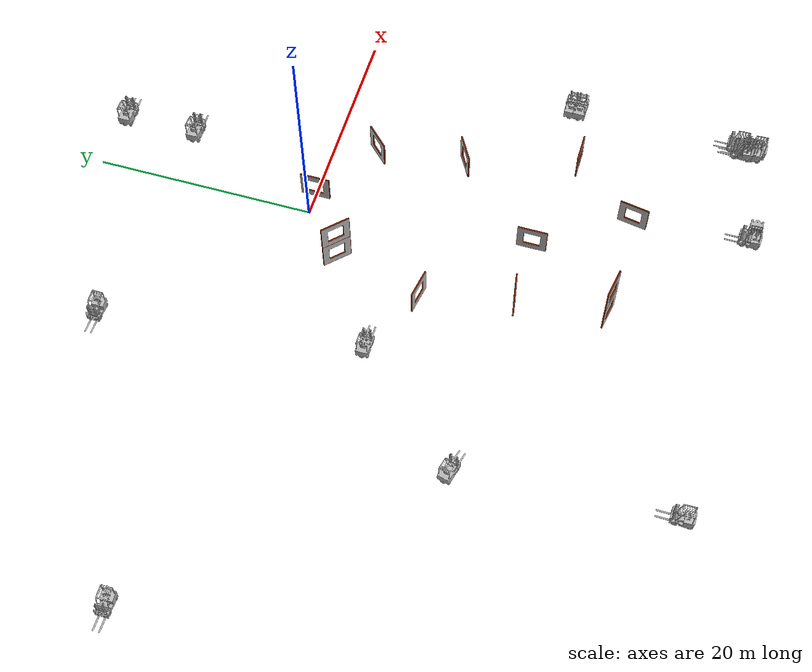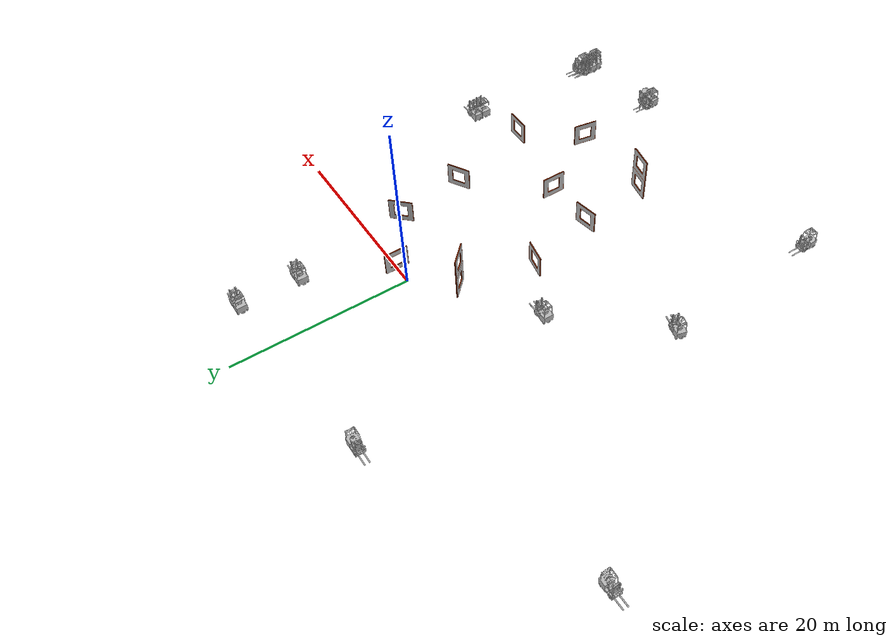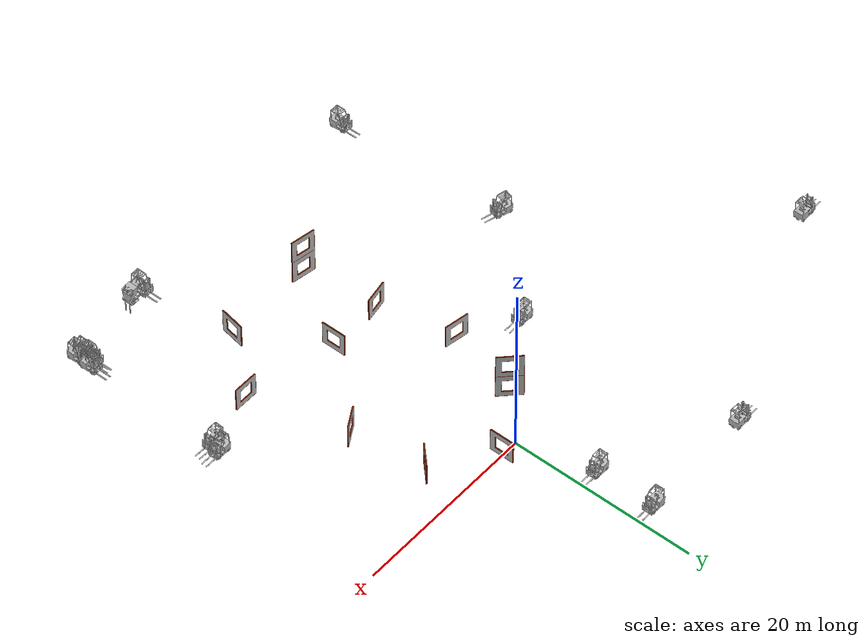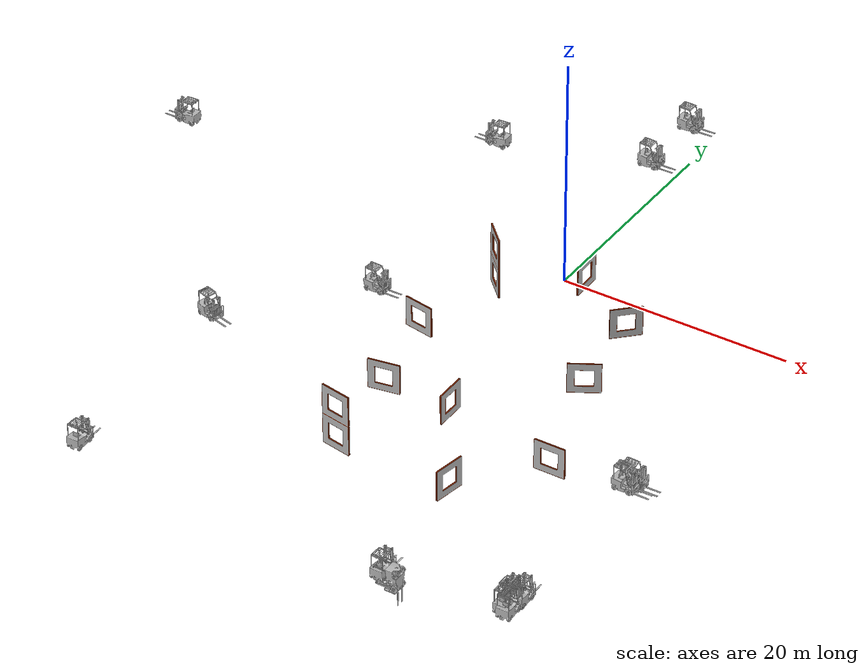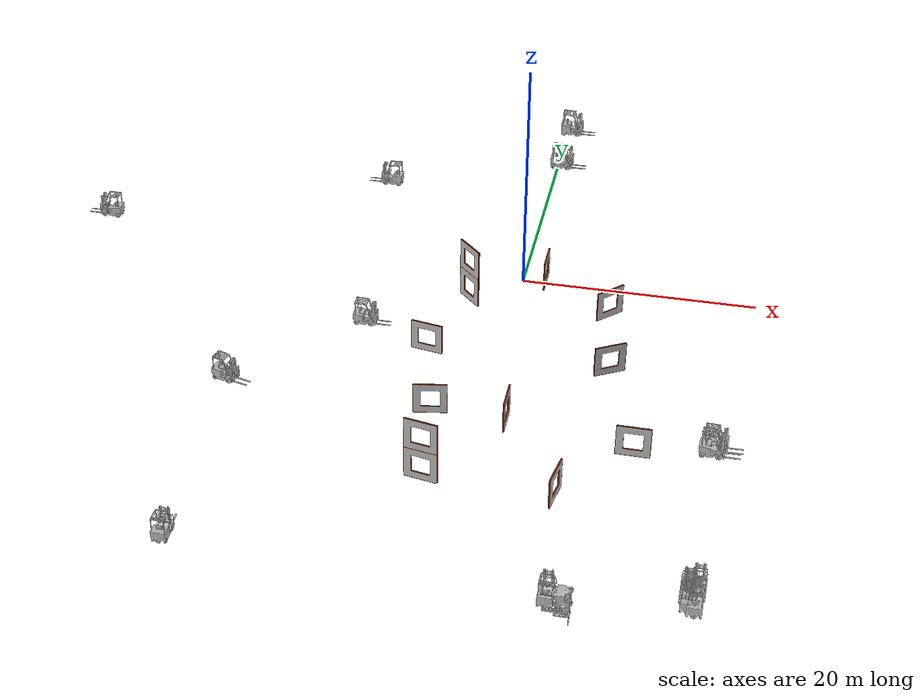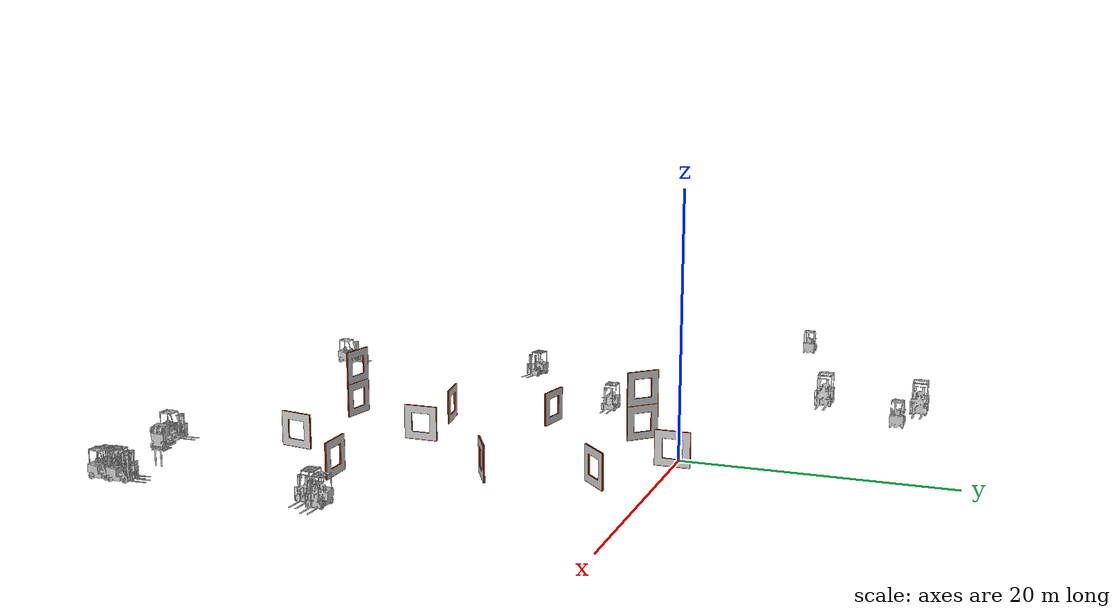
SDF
<sdf version="1.8">
 <world name="x3_illini_warehouse">
  <plugin filename="gz-sim-physics-system" name="gz::sim::systems::Physics"/>
  <plugin filename="gz-sim-sensors-system" name="gz::sim::systems::Sensors">
   <render_engine>ogre2</render_engine>
  </plugin>
  <plugin filename="gz-sim-imu-system" name="gz::sim::systems::Imu"/>
  <plugin filename="gz-sim-scene-broadcaster-system" name="gz::sim::systems::SceneBroadcaster"/>
  <plugin filename="gz-sim-user-commands-system" name="gz::sim::systems::UserCommands"/>
  <physics name="fast" type="ignored">
   <max_step_size>0.004</max_step_size>
   <real_time_factor>1</real_time_factor>
  </physics>
  <scene><ambient>0.3 0.3 0.3</ambient><grid>false</grid></scene>
  <light type="spot" name="spot">
   <pose>-12 -34 10.0 0 0 0</pose>
   <diffuse>1 1 1 1</diffuse>
   <specular>1 1 1 1</specular>
   <intensity>1</intensity>
   <attenuation>
    <range>30</range>
    <linear>0.03</linear>
    <constant>0.02</constant>
    <quadratic>0.0</quadratic>
   </attenuation>
   <direction>0 0 -1</direction>
   <spot><inner_angle>0</inner_angle><outer_angle>2.5</outer_angle><falloff>0.5</falloff></spot>
   <visualize>false</visualize>
  </light>
  <light type="spot" name="spot2">
   <pose>8 -14 10.0 0 0 0</pose>
   <diffuse>1 1 1 1</diffuse>
   <specular>1 1 1 1</specular>
   <intensity>1</intensity>
   <attenuation>
    <range>30</range>
    <linear>0.03</linear>
    <constant>0.02</constant>
    <quadratic>0.0</quadratic>
   </attenuation>
   <direction>0 0 -1</direction>
   <spot><inner_angle>0</inner_angle><outer_angle>2.5</outer_angle><falloff>0.5</falloff></spot>
   <cast_shadows>false</cast_shadows>
   <visualize>false</visualize>
  </light>
  <light type="spot" name="spot3">
   <pose>-3 -14 10.0 0 0 0</pose>
   <diffuse>1 1 1 1</diffuse>
   <specular>1 1 1 1</specular>
   <intensity>1</intensity>
   <attenuation>
    <range>30</range>
    <linear>0.03</linear>
    <constant>0.02</constant>
    <quadratic>0.0</quadratic>
   </attenuation>
   <direction>0 0 -1</direction>
   <spot><inner_angle>0</inner_angle><outer_angle>2.5</outer_angle><falloff>0.5</falloff></spot>
   <cast_shadows>false</cast_shadows>
   <visualize>false</visualize>
  </light>
  <light type="spot" name="spot4">
   <pose>-22 8 12.0 0 0 0</pose>
   <diffuse>1 1 1 1</diffuse>
   <specular>1 1 1 1</specular>
   <intensity>1</intensity>
   <attenuation>
    <range>30</range>
    <linear>0.03</linear>
    <constant>0.02</constant>
    <quadratic>0.0</quadratic>
   </attenuation>
   <direction>0 0 -1</direction>
   <spot><inner_angle>0</inner_angle><outer_angle>2.5</outer_angle><falloff>0.5</falloff></spot>
   <cast_shadows>false</cast_shadows>
   <visualize>false</visualize>
  </light>
  <light type="spot" name="spot5">
   <pose>-8 -14 10.0 0 0 0</pose>
   <diffuse>1 1 1 1</diffuse>
   <specular>1 1 1 1</specular>
   <intensity>1</intensity>
   <attenuation>
    <range>30</range>
    <linear>0.03</linear>
    <constant>0.02</constant>
    <quadratic>0.0</quadratic>
   </attenuation>
   <direction>0 0 -1</direction>
   <spot><inner_angle>0</inner_angle><outer_angle>2.5</outer_angle><falloff>0.5</falloff></spot>
   <cast_shadows>false</cast_shadows>
   <visualize>false</visualize>
  </light>
  <include>
   <static>true</static>
   <name>gate1</name>
   <uri>model://orange_single_gate</uri>
   <pose>2 0 0.0 0.0 0.0 0.0</pose>
  </include>
  <include>
   <static>true</static>
   <name>gate2</name>
   <uri>model://orange_single_gate</uri>
   <pose>8 -4 0.0 0.0 0.0 -0.7854</pose>
  </include>
  <include>
   <static>true</static>
   <name>gate3</name>
   <uri>model://orange_single_gate</uri>
   <pose>9 -12 0.0 0.0 0.0 -1.0472</pose>
  </include>
  <include>
   <static>true</static>
   <name>gate4</name>
   <uri>model://orange_single_gate</uri>
   <pose>12 -22 0.0 0.0 0.0 -1.5708</pose>
  </include>
  <include>
   <static>true</static>
   <name>gate5</name>
   <uri>model://orange_single_gate</uri>
   <pose>7 -28 0.0 0.0 0.0 -0.17454</pose>
  </include>
  <include>
   <static>true</static>
   <name>gate6</name>
   <uri>model://orange_single_gate</uri>
   <pose>2 -20 0.0 0.0 0.0 0</pose>
  </include>
  <include>
   <static>true</static>
   <name>gate7</name>
   <uri>model://orange_double_gate</uri>
   <pose>-3 -28 0.0 0.0 0.0 -1.74534</pose>
  </include>
  <include>
   <static>true</static>
   <name>gate8</name>
   <uri>model://orange_single_gate</uri>
   <pose>-4 -20 0.0 0.0 0.0 -1.396267</pose>
  </include>
  <include>
   <static>true</static>
   <name>gate9</name>
   <uri>model://orange_single_gate</uri>
   <pose>-6 -12 0.0 0.0 0.0 -1.74534</pose>
  </include>
  <include>
   <static>true</static>
   <name>gate10</name>
   <uri>model://orange_double_gate</uri>
   <pose>-4 -4 0.0 0.0 0.0 -2.3562</pose>
  </include>
  <include>
   <static>true</static>
   <name>Distribution_Warehouse</name>
   <uri>model://distribution_warehouse/1</uri>
   <pose>-12 -9 0 0 0 -1.5708</pose>
  </include>
  <include>
   <static>true</static>
   <name>55gal_Drum</name>
   <uri>model://55gal_drum/1</uri>
   <pose>17.94 -37.3757 0.0000 0.0000 -0.0000 0.0000</pose>
  </include>
  <include>
   <static>true</static>
   <name>55gal_Drum.001</name>
   <uri>model://55gal_drum/1</uri>
   <pose>17.5 -36.5122 0.0000 0.0000 -0.0000 0.0000</pose>
  </include>
  <include>
   <static>true</static>
   <name>55gal_Drum.002</name>
   <uri>model://55gal_drum/1</uri>
   <pose>18.0337 -35.7386 0.0000 0.0000 -0.0000 0.0000</pose>
  </include>
  <include>
   <static>true</static>
   <name>55gal_Drum.003</name>
   <uri>model://55gal_drum/1</uri>
   <pose>17.3741 -36.2211 0.0000 0.0000 -0.0000 0.0000</pose>
  </include>
  <include>
   <static>true</static>
   <name>55gal_Drum.004</name>
   <uri>model://55gal_drum/1</uri>
   <pose>17.4938 -37.0603 0.0000 0.0000 -0.0000 0.0000</pose>
  </include>
  <include>
   <static>true</static>
   <name>Cable_Spool</name>
   <uri>model://cable_spool/1</uri>
   <pose>17.9051 -19.9041 0.0000 0.0 0.0 -1.5708</pose>
  </include>
  <include>
   <static>true</static>
   <name>Cable_Spool.001</name>
   <uri>model://cable_spool/1</uri>
   <pose>17.7221 -20.7664 0.24 0.0 0.0 -1.6</pose>
  </include>
  <include>
   <static>true</static>
   <name>Cable_Spool.002</name>
   <uri>model://cable_spool/1</uri>
   <pose>8 -38.5 0.0000 0.0000 -0.0000 0.0000</pose>
  </include>
  <include>
   <static>true</static>
   <name>Cable_Spool.003</name>
   <uri>model://cable_spool/1</uri>
   <pose>9.8 -38.7 0.4916 -1.5708 -0.0000 1.5708</pose>
  </include>
  <include>
   <static>true</static>
   <name>Dumpster_Large</name>
   <uri>model://dumpster_large/1</uri>
   <pose>-14.84 14.08 0.0000 0.0000 -0.0000 1.5708</pose>
  </include>
  <include>
   <static>true</static>
   <name>Dumpster_Large2</name>
   <uri>model://dumpster_large/1</uri>
   <pose>-38.84 3.08 0.0000 0.0000 -0.0000 1.5708</pose>
  </include>
  <include>
   <static>true</static>
   <name>Dumpster_Large3</name>
   <uri>model://dumpster_large/1</uri>
   <pose>-19.64 -37.83 0.0000 0.0000 -0.0000 0.0000</pose>
  </include>
  <include>
   <static>true</static>
   <name>Forklift</name>
   <uri>model://forklift/1</uri>
   <pose>-21.10 -18.92 0.0000 0.0000 0.0000 -1.8313</pose>
  </include>
  <include>
   <static>true</static>
   <name>Generator</name>
   <uri>model://generator/1</uri>
   <pose>1.44 17.0 5.6572 0.0 0.0 -1.5708</pose>
  </include>
  <include>
   <static>true</static>
   <name>Generator.001</name>
   <uri>model://generator/1</uri>
   <pose>1.44 10.6236 5.6572 0.0 0.0 -1.5708</pose>
  </include>
 </world>
</sdf>

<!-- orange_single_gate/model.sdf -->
<sdf version="1.9">
  <model name="orange_single_gate">
    <static>true</static>

    <link name="link">
      <visual name="visual">
        <geometry>
          <mesh>
            <uri>model://orange_single_gate/meshes/orange_single_gate.dae</uri>
          </mesh>
        </geometry>
      </visual>

      <collision name="collision">
        <geometry>
          <mesh>
            <uri>model://orange_single_gate/meshes/orange_single_gate.dae</uri>
          </mesh>
        </geometry>
      </collision>
    </link>
  </model>
</sdf>

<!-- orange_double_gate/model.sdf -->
<sdf version="1.9">
  <model name="orange_double_gate">
    <static>true</static>

    <link name="link">
      <visual name="visual">
        <geometry>
          <mesh>
            <uri>model://orange_double_gate/meshes/orange_double_gate.dae</uri>
          </mesh>
        </geometry>
      </visual>

      <collision name="collision">
        <geometry>
          <mesh>
            <uri>model://orange_double_gate/meshes/orange_double_gate.dae</uri>
          </mesh>
        </geometry>
      </collision>
    </link>
  </model>
</sdf>

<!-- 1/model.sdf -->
<sdf version="1.6">
    <model name="Forklift">
        <link name="base_link">
            <visual name="base_visual">
                <geometry>
                    <mesh>
                        <uri>base_visual.dae</uri>
                    </mesh>
                </geometry>
            </visual>
            <collision name="forklift_b132_collider_cylinder">
                <pose>-0.455378 0.684627 0.285136 0.0 1.570796 0.0</pose>
                <geometry>
                    <cylinder>
                        <radius>0.284716</radius>
                        <length>0.224494</length>
                    </cylinder>
                </geometry>
            </collision>
            <collision name="forklift_b129_collider_cylinder">
                <pose>-0.465442 -0.557447 0.222519 0.0 1.570796 0.0</pose>
                <geometry>
                    <cylinder>
                        <radius>0.238229</radius>
                        <length>0.161316</length>
                    </cylinder>
                </geometry>
            </collision>
            <collision name="forklift_b128_collider_cylinder">
                <pose>0.455379 0.684627 0.285136 0.0 1.570796 0.0</pose>
                <geometry>
                    <cylinder>
                        <radius>0.284716</radius>
                        <length>0.224494</length>
                    </cylinder>
                </geometry>
            </collision>
            <collision name="forklift_b125_collider_cylinder">
                <pose>0.465442 -0.557447 0.222519 0.0 1.570796 0.0</pose>
                <geometry>
                    <cylinder>
                        <radius>0.238229</radius>
                        <length>0.161316</length>
                    </cylinder>
                </geometry>
            </collision>
            <collision name="forklift_b044_collider_box">
                <pose>0.263007 1.684895 0.149 0.0 1.570796 0.0</pose>
                <geometry>
                    <box>
                        <size>0.034368 1.219199 0.127</size>
                    </box>
                </geometry>
            </collision>
            <collision name="forklift_b094_collider_box">
                <pose>-0.263007 1.684895 0.149 0.0 1.570796 0.0</pose>
                <geometry>
                    <box>
                        <size>0.034368 1.219199 0.127</size>
                    </box>
                </geometry>
            </collision>
            <collision name="forklift_b094_collider_box.001">
                <pose>-0.263007 1.087425 0.393275 0.0 1.570796 0.0</pose>
                <geometry>
                    <box>
                        <size>0.522919 0.024258 0.127</size>
                    </box>
                </geometry>
            </collision>
            <collision name="forklift_b044_collider_box.001">
                <pose>0.263007 1.087432 0.393275 0.0 1.570796 0.0</pose>
                <geometry>
                    <box>
                        <size>0.522919 0.024273 0.127</size>
                    </box>
                </geometry>
            </collision>
            <collision name="forklift_b033_collider_box">
                <pose>0.0 1.050077 0.674221 0.0 1.570796 0.0</pose>
                <geometry>
                    <box>
                        <size>1.039757 0.075838 1.084605</size>
                    </box>
                </geometry>
            </collision>
            <collision name="forklift_b026_collider_box">
                <pose>0.0 -0.427481 0.582787 0.0 1.570796 0.0</pose>
                <geometry>
                    <box>
                        <size>0.93852 0.893155 1.0922</size>
                    </box>
                </geometry>
            </collision>
            <collision name="forklift_b026_collider_box.001">
                <pose>0.0 0.203739 0.381118 0.0 1.570796 0.0</pose>
                <geometry>
                    <box>
                        <size>0.535182 1.345925 1.0922</size>
                    </box>
                </geometry>
            </collision>
            <collision name="forklift_b140_collider_box">
                <pose>0.0 0.851012 1.063734 0.0 1.570796 0.0</pose>
                <geometry>
                    <box>
                        <size>1.870128 0.222264 0.721164</size>
                    </box>
                </geometry>
            </collision>
            <collision name="forklift_b139_collider_box">
                <pose>-0.0 0.798919 1.95054 0.0 1.570796 0.0</pose>
                <geometry>
                    <box>
                        <size>0.034998 0.277386 0.742054</size>
                    </box>
                </geometry>
            </collision>
            <collision name="forklift_b139_collider_box.001">
                <pose>0.0 0.756692 1.823356 0.0 1.570796 0.0</pose>
                <geometry>
                    <box>
                        <size>0.288451 0.157958 0.440354</size>
                    </box>
                </geometry>
            </collision>
            <collision name="forklift_b140_collider_box.001">
                <pose>0.0 0.878046 0.875679 0.0 1.570796 0.0</pose>
                <geometry>
                    <box>
                        <size>0.22967 0.129587 0.875406</size>
                    </box>
                </geometry>
            </collision>
            <collision name="forklift_b139_collider_box.002">
                <pose>-0.000873 0.515486 0.930159 1.570796 1.308997 1.570796</pose>
                <geometry>
                    <box>
                        <size>0.660991 0.220155 0.243121</size>
                    </box>
                </geometry>
            </collision>
            <collision name="forklift_b139_collider_cylinder">
                <pose>0.0 0.338926 1.258317 -0.272899 3.141593 -0.0</pose>
                <geometry>
                    <cylinder>
                        <radius>0.114914</radius>
                        <length>0.083365</length>
                    </cylinder>
                </geometry>
            </collision>
            <collision name="forklift_b143_collider_box">
                <pose>0.203028 0.395788 1.121018 0.992323 -0.000479 3.141591</pose>
                <geometry>
                    <box>
                        <size>0.06902 0.360071 0.092192</size>
                    </box>
                </geometry>
            </collision>
            <collision name="forklift_b139_collider_box.003">
                <pose>-0.284765 0.466145 0.966224 1.260286 3.141593 -0.0</pose>
                <geometry>
                    <box>
                        <size>0.075778 0.433645 0.070774</size>
                    </box>
                </geometry>
            </collision>
            <collision name="forklift_b139_collider_box.004">
                <pose>-0.0 0.538142 0.948467 1.570797 -1.329257 -1.570797</pose>
                <geometry>
                    <box>
                        <size>0.3188 0.148748 0.910215</size>
                    </box>
                </geometry>
            </collision>
            <collision name="forklift_b139_collider_box.005">
                <pose>-0.471358 -0.666068 1.553107 0.0 -0.0 -1.570796</pose>
                <geometry>
                    <box>
                        <size>0.062739 0.033 1.032844</size>
                    </box>
                </geometry>
            </collision>
            <collision name="forklift_b139_collider_box.006">
                <pose>0.471358 -0.666068 1.553107 0.0 1.570796 0.0</pose>
                <geometry>
                    <box>
                        <size>1.032844 0.062739 0.033</size>
                    </box>
                </geometry>
            </collision>
            <collision name="forklift_b142_collider_box">
                <pose>-0.0 -0.172392 2.059983 -0.023069 -0.0 -0.0</pose>
                <geometry>
                    <box>
                        <size>0.981179 1.125203 0.115755</size>
                    </box>
                </geometry>
            </collision>
            <collision name="forklift_b139_collider_box.007">
                <pose>-0.47289 0.481024 1.334569 1.570796 1.326061 1.570796</pose>
                <geometry>
                    <box>
                        <size>1.500593 0.074299 0.0354</size>
                    </box>
                </geometry>
            </collision>
            <collision name="forklift_b139_collider_box.008">
                <pose>0.47289 0.481024 1.334569 1.570796 1.326061 1.570796</pose>
                <geometry>
                    <box>
                        <size>1.500593 0.074299 0.0354</size>
                    </box>
                </geometry>
            </collision>
            <collision name="forklift_b139_collider_box.009">
                <pose>0.0 -0.343208 1.190168 0.0 1.570796 0.0</pose>
                <geometry>
                    <box>
                        <size>0.39912 0.163592 0.561282</size>
                    </box>
                </geometry>
            </collision>
            <collision name="forklift_b139_collider_box.010">
                <pose>0.0 0.539583 0.734719 -0.393722 -0.0 3.141593</pose>
                <geometry>
                    <box>
                        <size>0.902271 0.740745 0.111237</size>
                    </box>
                </geometry>
            </collision>
            <collision name="forklift_b140_collider_box.002">
                <pose>0.0 0.927693 0.409215 3.141592 -0.0 -0.0</pose>
                <geometry>
                    <box>
                        <size>0.834675 0.203935 0.423513</size>
                    </box>
                </geometry>
            </collision>
            <collision name="forklift_b139_collider_box.011">
                <pose>0.472881 0.405408 1.378921 1.359241 0.0 3.141593</pose>
                <geometry>
                    <box>
                        <size>0.016 0.195484 0.11207</size>
                    </box>
                </geometry>
            </collision>
            <collision name="forklift_b139_collider_box.012">
                <pose>-0.472881 0.405408 1.378921 -0.0 1.359241 1.570796</pose>
                <geometry>
                    <box>
                        <size>0.195484 0.016 0.11207</size>
                    </box>
                </geometry>
            </collision>
        </link>
    </model>
</sdf>
